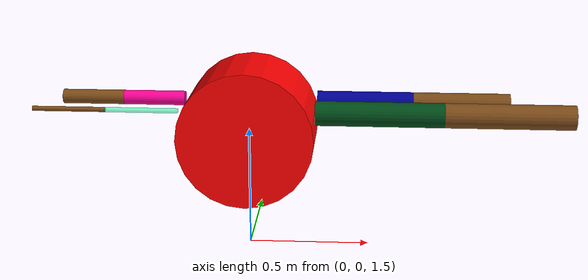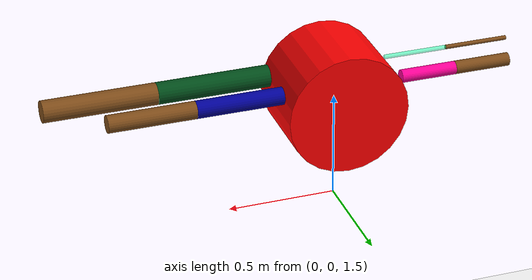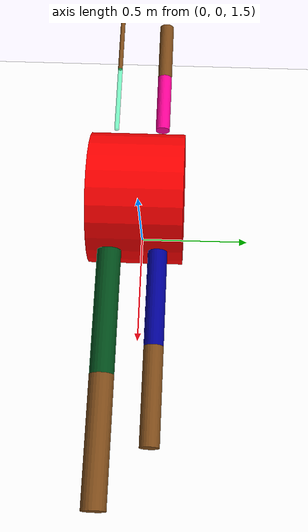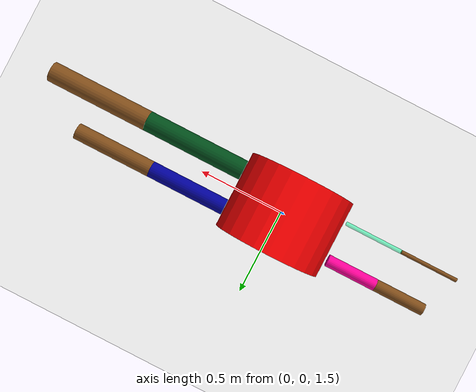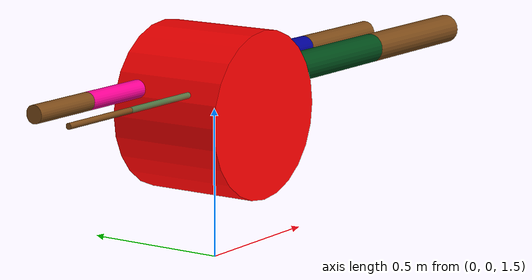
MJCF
<mujoco>
    <option gravity="0 0 -50.81" />
    <worldbody>
        <light diffuse="0.8 0.8 0.8" pos="0 0 8" dir="0 0 -1" />
        <geom type="plane" size="3 3 0.1" rgba="1 1 1 1" />

        <body name="main_body" pos="0 0 2">
            <joint name="main_body" type="free" />
            <geom type="cylinder" size="0.28 0.2" rgba="1 0 0 1" euler="90 0 90" mass="40" />

            <body name="leg1" pos="-0.43000000000000005 -0.1 0.1" euler="0 90 0">
                <joint name="leg1-1" pos="0 0 0.15" type="hinge" axis="0 1 0" range="-45 45" />
                <geom type="cylinder" size="0.01 0.15" rgba="0 1 0.6 0.5" mass="10" />
                <body name="shank1" pos="0 0 -0.3">
                    <joint name="leg1-2" pos="0 0 0.15" type="hinge" axis="0 1 0" range="-90 -70" />
                    <geom type="cylinder" size="0.01 0.15" rgba="0.5 0.3 0.1 1" mass="30" />
                </body>
            </body>

            <body name="leg2" pos="-0.41000000000000003 0.1 0.1" euler="0 90 0">
                <joint name="leg2-1" pos="0 0 0.13" type="hinge" axis="0 1 0" range="-45 45" />
                <geom type="cylinder" size="0.03 0.13" rgba="1 0 0.6 1" mass="10" />
                <body name="shank2" pos="0 0 -0.26">
                    <joint name="leg2-2" pos="0 0 0.13" type="hinge" axis="0 1 0" range="-90 -70" />
                    <geom type="cylinder" size="0.03 0.13" rgba="0.5 0.3 0.1 1" mass="30" />
                </body>
            </body>

            <body name="leg3" pos="0.54 -0.1 0.1" euler="0 -90 0">
                <joint name="leg3-1" pos="0 0 0.26" type="hinge" axis="0 1 0" range="-45 45" />
                <geom type="cylinder" size="0.05 0.26" rgba="0 0.3 0.1 1" mass="10" />
                <body name="shank3" pos="0 0 -0.52">
                    <joint name="leg3-2" pos="0 0 0.26" type="hinge" axis="0 1 0" range="70 90" />
                    <geom type="cylinder" size="0.05 0.26" rgba="0.5 0.3 0.1 1" mass="30" />
                </body>
            </body>

            <body name="leg4" pos="0.48000000000000004 0.1 0.1" euler="0 -90 0">
                <joint name="leg4-1" pos="0 0 0.2" type="hinge" axis="0 1 0" range="-45 45" />
                <geom type="cylinder" size="0.04 0.2" rgba="0 0 0.6 1" mass="10" />
                <body name="shank4" pos="0 0 -0.4">
                    <joint name="leg4-2" pos="0 0 0.2" type="hinge" axis="0 1 0" range="70 90" />
                    <geom type="cylinder" size="0.04 0.2" rgba="0.5 0.3 0.1 1" mass="30" />
                </body>
            </body>
        </body>

    </worldbody>
    <actuator>
        <motor joint="leg1-1" name="fl1j" />
        <motor joint="leg1-2" name="fl2j" />
        <motor joint="leg3-1" name="bl1j" />
        <motor joint="leg3-2" name="bl2j" />
        <motor joint="leg2-1" name="fr1j" />
        <motor joint="leg2-2" name="fr2j" />
        <motor joint="leg4-1" name="br1j" />
        <motor joint="leg4-2" name="br2j" />
    </actuator>
</mujoco>
